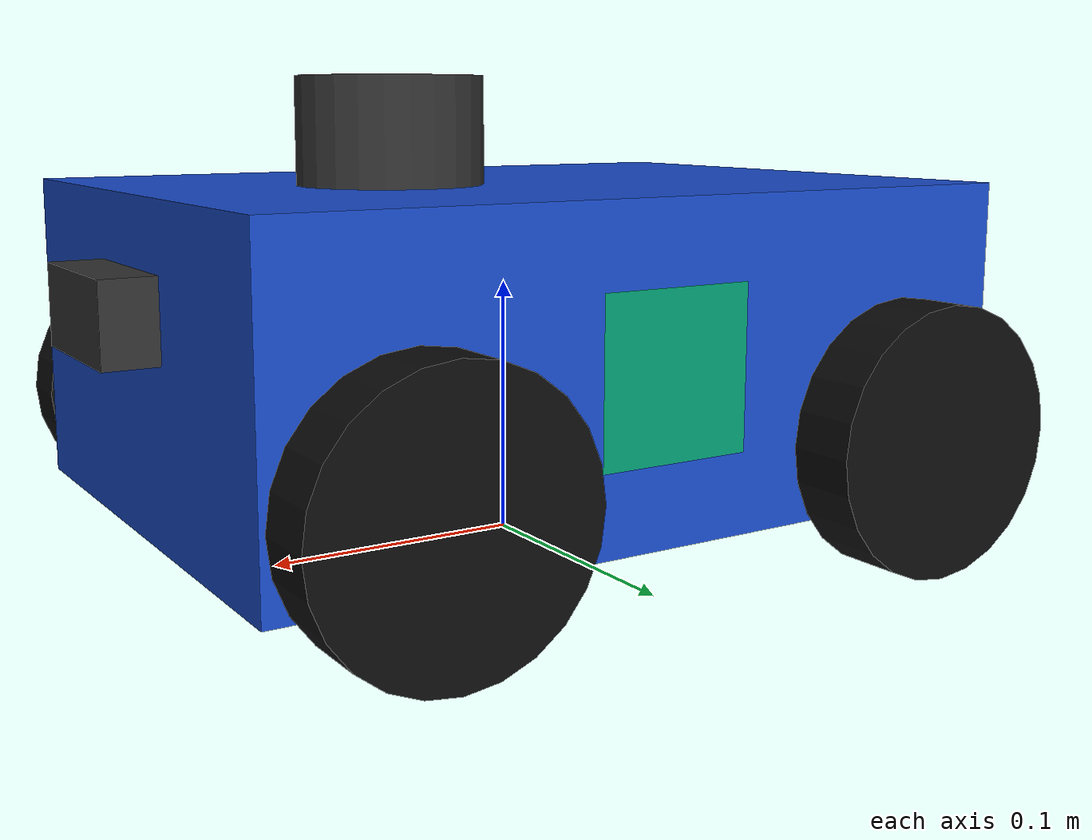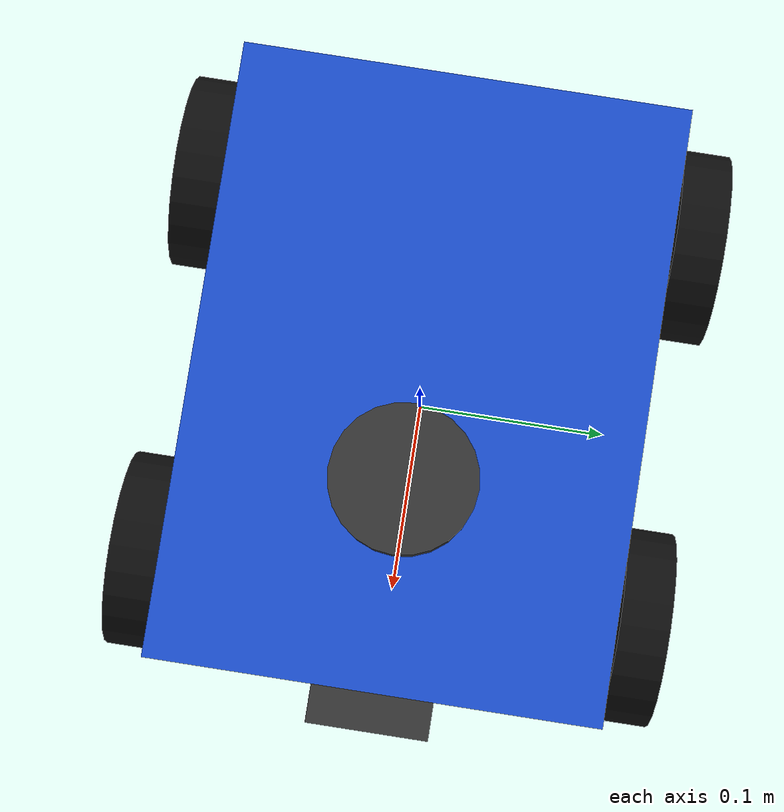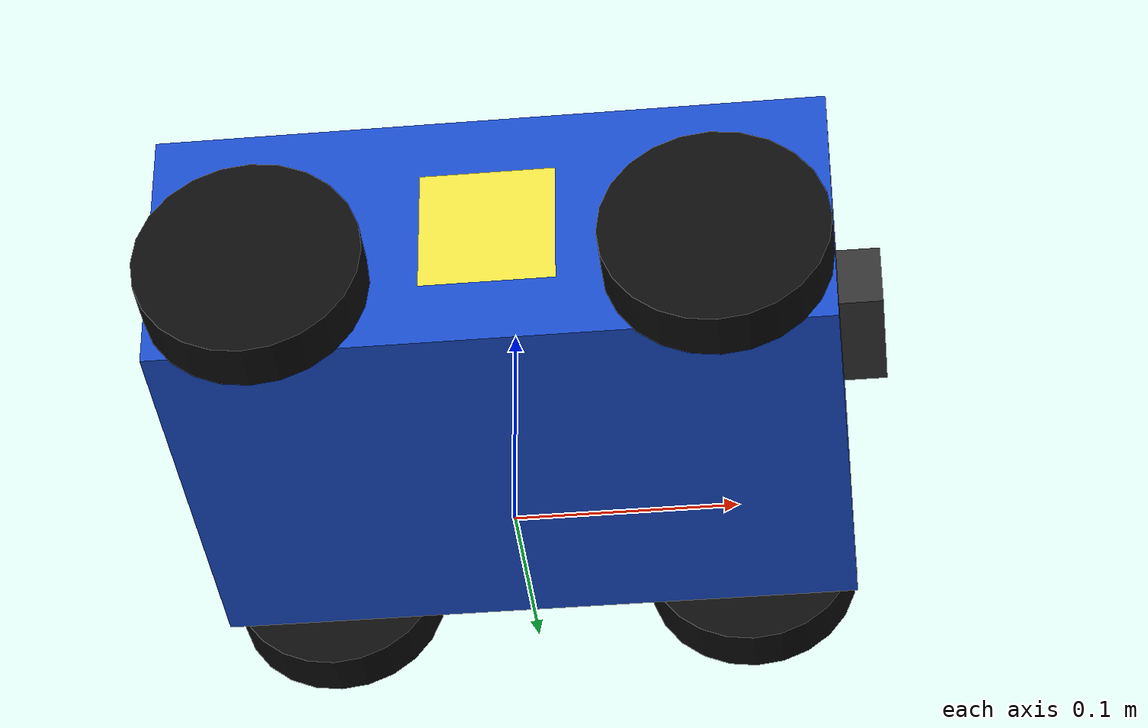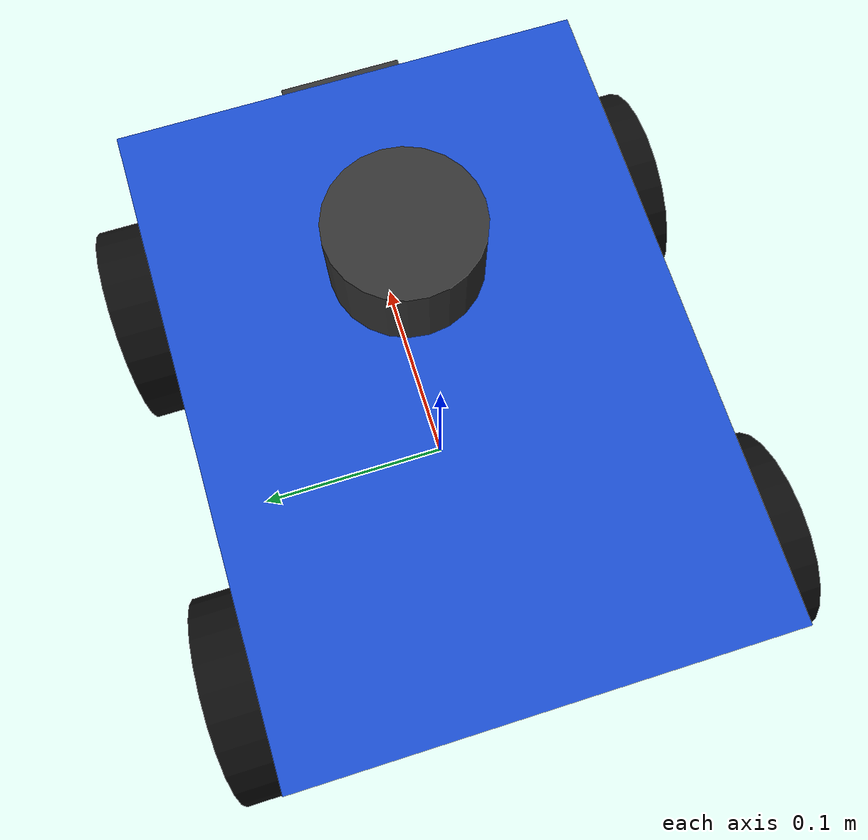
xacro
<?xml version="1.0"?>
<robot name="simple_diffbot" xmlns:xacro="http://www.ros.org/wiki/xacro">

  <!-- Dimensions (m) and masses (kg) -->
  <xacro:property name="chassis_length" value="0.30"/>
  <xacro:property name="chassis_width"  value="0.22"/>
  <xacro:property name="chassis_height" value="0.12"/>
  <xacro:property name="chassis_mass"   value="3.0"/>
  <xacro:property name="ground_clearance" value="0.02"/>

  <xacro:property name="wheel_radius" value="0.05"/>
  <xacro:property name="wheel_width"  value="0.025"/>
  <xacro:property name="wheel_mass"   value="0.2"/>
  <!-- Gap between chassis side and wheel inner face -->
  <xacro:property name="wheel_side_gap" value="0.005"/>
  <xacro:arg name="wheel_track" default="0.255"/>
  <xacro:property name="wheel_track" value="$(arg wheel_track)"/>
  <!-- Skid-steer slip correction for Gazebo DiffDrive: effective separation = wheel_track * factor.
       1.0 = ideal. Calibrate: command a known angular.z, compare /odom yaw with true yaw. -->
  <xacro:arg name="skid_steer_factor" default="1.4"/>
  <xacro:property name="skid_steer_factor" value="$(arg skid_steer_factor)"/>
  <xacro:property name="wheel_x_offset" value="0.10"/>  <!-- front/rear axle distance from base_link -->

  <xacro:property name="laser_x" value="0.05"/>

  <!-- AI Farm Robotics logo decals on the chassis sides (visual only, 497:466 aspect) -->
  <xacro:property name="logo_w" value="0.06"/>
  <xacro:property name="logo_h" value="0.06"/>

  <!-- base_link sits on the wheel axle height; chassis centre relative to base_link -->
  <xacro:property name="chassis_center_z" value="${ground_clearance + chassis_height/2.0 - wheel_radius}"/>

  <!-- Fail early if the wheels would intersect the chassis -->
  <xacro:if value="${wheel_track &lt; chassis_width + wheel_width}">
    <error wheel_track_too_small="${1/0}"/>
  </xacro:if>

  <material name="chassis_blue"><color rgba="0.1 0.3 0.8 1.0"/></material>
  <material name="wheel_black"><color rgba="0.05 0.05 0.05 1.0"/></material>
  <material name="sensor_dark"><color rgba="0.2 0.2 0.2 1.0"/></material>
  <material name="sensor_green"><color rgba="0.1 0.7 0.2 1.0"/></material>

  <xacro:include filename="inertial_macros.xacro"/>
  <xacro:include filename="wheel.xacro"/>

  <link name="base_footprint"/>
  <joint name="base_footprint_joint" type="fixed">
    <parent link="base_footprint"/>
    <child link="base_link"/>
    <origin xyz="0 0 ${wheel_radius}" rpy="0 0 0"/>
  </joint>

  <link name="base_link">
    <visual>
      <origin xyz="0 0 ${chassis_center_z}"/>
      <geometry><box size="${chassis_length} ${chassis_width} ${chassis_height}"/></geometry>
      <material name="chassis_blue"/>
    </visual>
    <collision>
      <origin xyz="0 0 ${chassis_center_z}"/>
      <geometry><box size="${chassis_length} ${chassis_width} ${chassis_height}"/></geometry>
    </collision>
    <inertial>
      <origin xyz="0 0 ${chassis_center_z}"/>
      <mass value="${chassis_mass}"/>
      <inertia ixx="${chassis_mass*(chassis_width**2+chassis_height**2)/12.0}" ixy="0" ixz="0"
               iyy="${chassis_mass*(chassis_length**2+chassis_height**2)/12.0}" iyz="0"
               izz="${chassis_mass*(chassis_length**2+chassis_width**2)/12.0}"/>
    </inertial>
  </link>

  <!-- Logo decals: left (+y) faces +y, right (-y) is yawed by pi to face -y -->
  <xacro:macro name="logo_decal" params="name y_side">
    <link name="logo_${name}_link">
      <visual>
        <origin xyz="0 0 0" rpy="0 0 ${0 if y_side &gt; 0 else pi}"/>
        <geometry>
          <mesh filename="file://$(find simple_diffbot_description)/meshes/logo_plane.dae"
                scale="${logo_w} 1 ${logo_h}"/>
        </geometry>
      </visual>
    </link>
    <joint name="logo_${name}_joint" type="fixed">
      <parent link="base_link"/>
      <child link="logo_${name}_link"/>
      <origin xyz="0 ${y_side * (chassis_width/2.0 + 0.0005)} ${chassis_center_z}" rpy="0 0 0"/>
    </joint>
  </xacro:macro>
  <xacro:logo_decal name="left"  y_side="1"/>
  <xacro:logo_decal name="right" y_side="-1"/>

  <xacro:wheel name="front_left"  x_pos="${wheel_x_offset}"  y_side="1"/>
  <xacro:wheel name="rear_left"   x_pos="${-wheel_x_offset}" y_side="1"/>
  <xacro:wheel name="front_right" x_pos="${wheel_x_offset}"  y_side="-1"/>
  <xacro:wheel name="rear_right"  x_pos="${-wheel_x_offset}" y_side="-1"/>

  <xacro:include filename="sensors.xacro"/>

  <xacro:include filename="gazebo.xacro"/>
  <xacro:gz_plugins/>

  <!-- ros2_control is intentionally not included yet. Controlled joints will be:
       front_left_wheel_joint, rear_left_wheel_joint, front_right_wheel_joint, rear_right_wheel_joint -->

</robot>

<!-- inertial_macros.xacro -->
<robot xmlns:xacro="http://www.ros.org/wiki/xacro">

  <!-- Solid box of mass m and size x*y*z, centred on the link origin -->
  <xacro:macro name="box_inertial" params="m x y z">
    <inertial>
      <origin xyz="0 0 0" rpy="0 0 0"/>
      <mass value="${m}"/>
      <inertia ixx="${m*(y*y+z*z)/12.0}" ixy="0" ixz="0"
               iyy="${m*(x*x+z*z)/12.0}" iyz="0"
               izz="${m*(x*x+y*y)/12.0}"/>
    </inertial>
  </xacro:macro>

  <!-- Solid cylinder whose symmetry axis is the link Z axis -->
  <xacro:macro name="cylinder_inertial" params="m r h">
    <inertial>
      <origin xyz="0 0 0" rpy="0 0 0"/>
      <mass value="${m}"/>
      <inertia ixx="${m*(3*r*r+h*h)/12.0}" ixy="0" ixz="0"
               iyy="${m*(3*r*r+h*h)/12.0}" iyz="0"
               izz="${m*r*r/2.0}"/>
    </inertial>
  </xacro:macro>

</robot>

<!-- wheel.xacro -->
<robot xmlns:xacro="http://www.ros.org/wiki/xacro">

  <xacro:macro name="wheel" params="name x_pos y_side">
    <link name="${name}_wheel_link">
      <visual>
        <geometry><cylinder radius="${wheel_radius}" length="${wheel_width}"/></geometry>
        <material name="wheel_black"/>
      </visual>
      <collision>
        <geometry><cylinder radius="${wheel_radius}" length="${wheel_width}"/></geometry>
      </collision>
      <xacro:cylinder_inertial m="${wheel_mass}" r="${wheel_radius}" h="${wheel_width}"/>
    </link>

    <joint name="${name}_wheel_joint" type="continuous">
      <parent link="base_link"/>
      <child link="${name}_wheel_link"/>
      <origin xyz="${x_pos} ${y_side * wheel_track / 2.0} 0" rpy="${-pi/2} 0 0"/>
      <axis xyz="0 0 1"/>
      <dynamics damping="0.01" friction="0.01"/>
    </joint>
  </xacro:macro>

</robot>

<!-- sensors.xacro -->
<robot xmlns:xacro="http://www.ros.org/wiki/xacro">

  <!-- 2D LiDAR on top of the chassis (REP-103: X forward, Z up) -->
  <link name="laser_link">
    <visual>
      <geometry><cylinder radius="0.035" length="0.04"/></geometry>
      <material name="sensor_dark"/>
    </visual>
    <collision>
      <geometry><cylinder radius="0.035" length="0.04"/></geometry>
    </collision>
    <xacro:cylinder_inertial m="0.15" r="0.035" h="0.04"/>
  </link>
  <joint name="laser_joint" type="fixed">
    <parent link="base_link"/>
    <child link="laser_link"/>
    <origin xyz="${laser_x} 0 ${chassis_center_z + chassis_height/2.0 + 0.02}" rpy="0 0 0"/>
  </joint>

  <!-- IMU at the chassis centre -->
  <link name="imu_link">
    <visual>
      <geometry><box size="0.02 0.02 0.01"/></geometry>
      <material name="sensor_green"/>
    </visual>
    <xacro:box_inertial m="0.01" x="0.02" y="0.02" z="0.01"/>
  </link>
  <joint name="imu_joint" type="fixed">
    <parent link="base_link"/>
    <child link="imu_link"/>
    <origin xyz="0 0 ${chassis_center_z}" rpy="0 0 0"/>
  </joint>

  <!-- RGB camera at the front face of the chassis -->
  <link name="camera_link">
    <visual>
      <geometry><box size="0.02 0.06 0.03"/></geometry>
      <material name="sensor_dark"/>
    </visual>
    <collision>
      <geometry><box size="0.02 0.06 0.03"/></geometry>
    </collision>
    <xacro:box_inertial m="0.05" x="0.02" y="0.06" z="0.03"/>
  </link>
  <joint name="camera_joint" type="fixed">
    <parent link="base_link"/>
    <child link="camera_link"/>
    <origin xyz="${chassis_length/2.0 + 0.01} 0 ${chassis_center_z + 0.02}" rpy="0 0 0"/>
  </joint>

  <!-- Optical frame: Z forward, X right, Y down -->
  <link name="camera_optical_frame"/>
  <joint name="camera_optical_joint" type="fixed">
    <parent link="camera_link"/>
    <child link="camera_optical_frame"/>
    <origin xyz="0 0 0" rpy="${-pi/2} 0 ${-pi/2}"/>
  </joint>

</robot>
